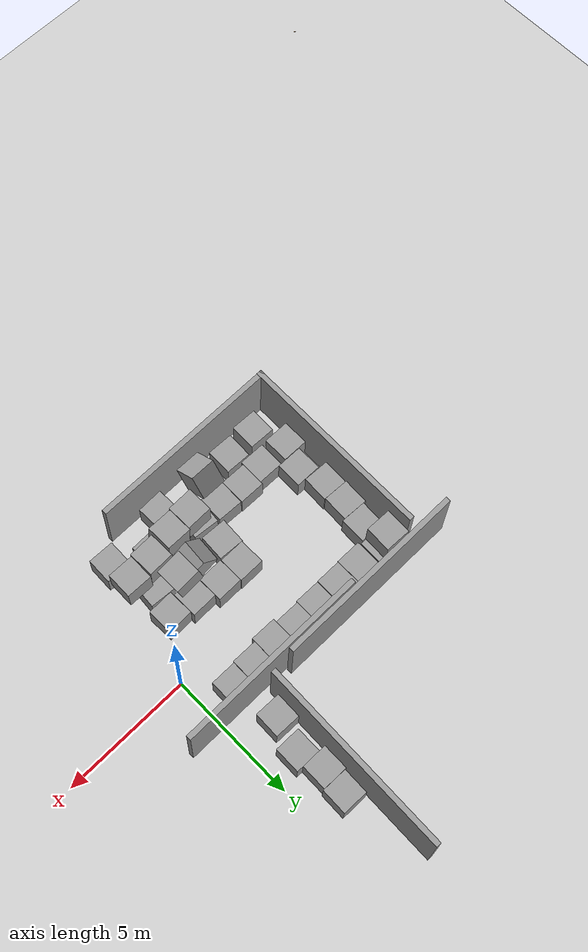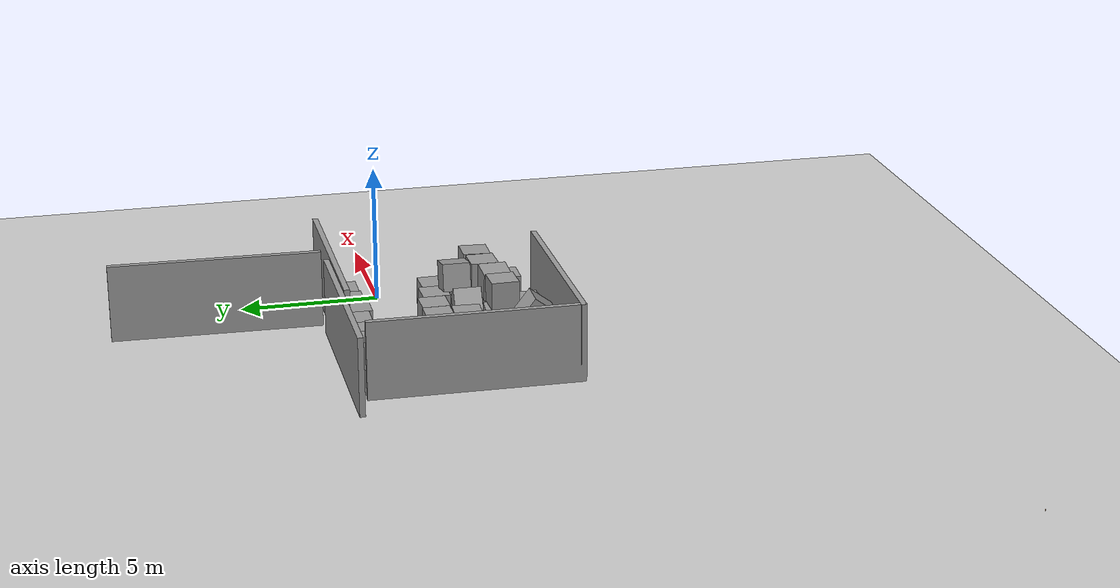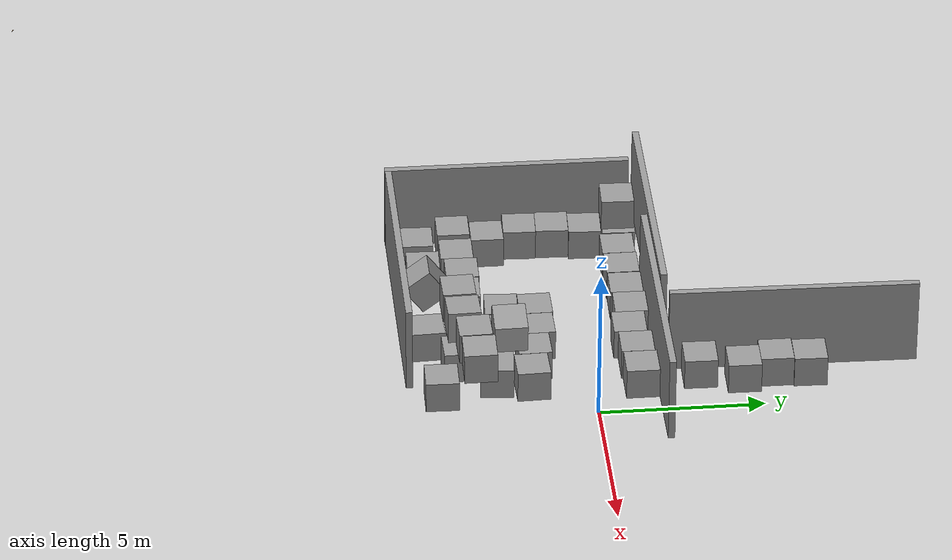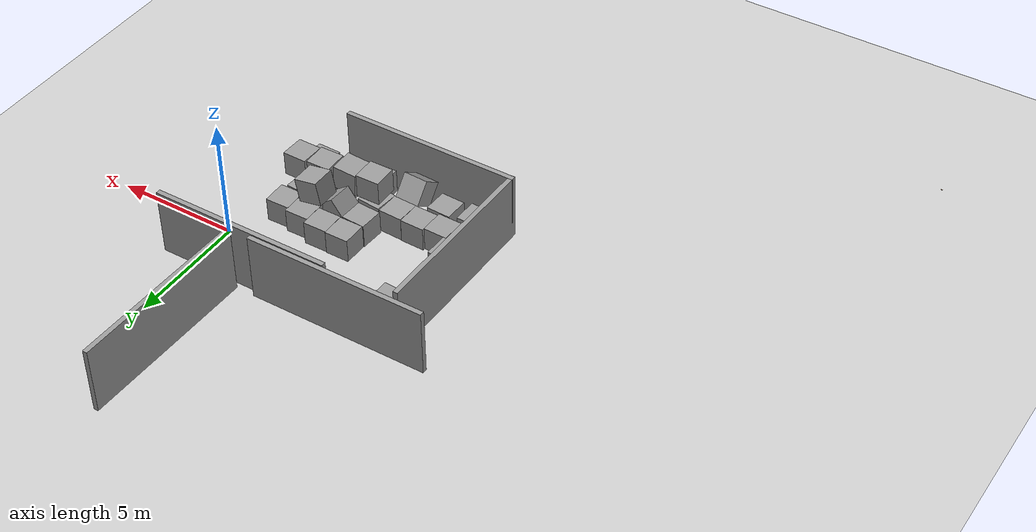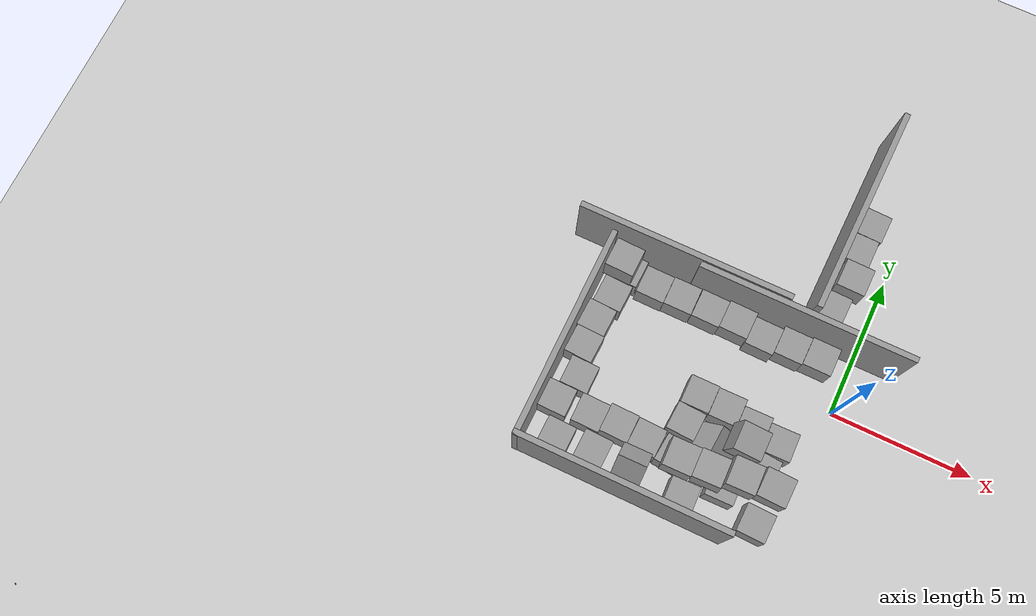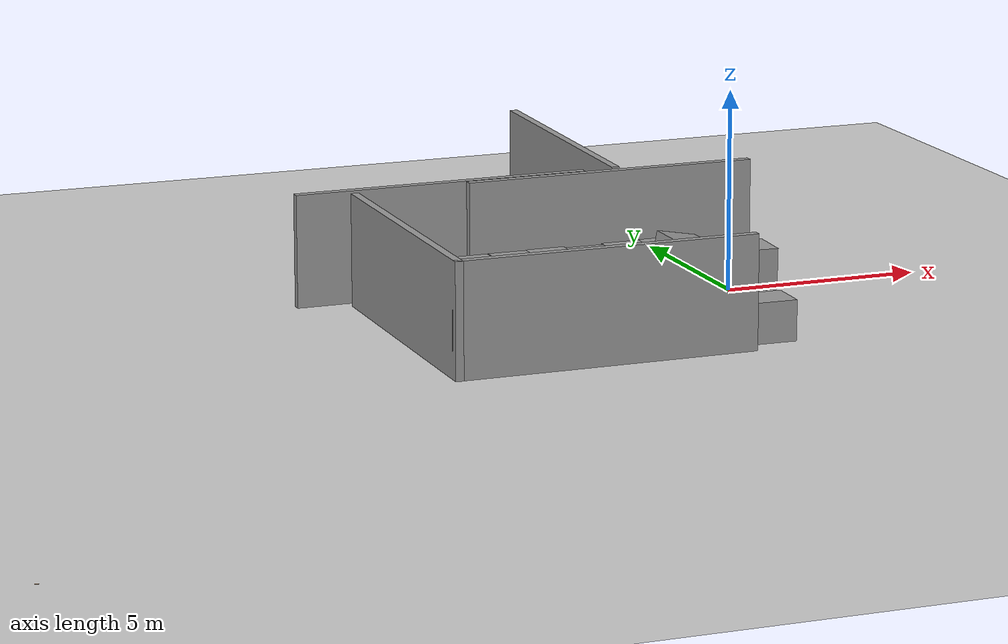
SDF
<sdf version="1.7">
 <world name="default">
  <model name="ground_plane">
   <static>1</static>
   <link name="link">
    <collision name="collision">
     <geometry><plane><normal>0 0 1</normal><size>100 100</size></plane></geometry>
     <surface>
      <contact><collide_bitmask>65535</collide_bitmask></contact>
      <friction><ode><mu>100</mu><mu2>50</mu2></ode></friction>
     </surface>
    </collision>
    <visual name="visual">
     <cast_shadows>0</cast_shadows>
     <geometry><plane><normal>0 0 1</normal><size>100 100</size></plane></geometry>
     <material>
      <script><uri>file://media/materials/scripts/gazebo.material</uri><name>Gazebo/Grey</name></script>
     </material>
    </visual>
   </link>
  </model>
  <model name="unit_box_clone_23">
   <pose>-1.29282 -1.86729 0.499995 0 -1e-05 0.020148</pose>
   <link name="link">
    <inertial>
     <mass>1</mass>
     <inertia>
      <ixx>0.166667</ixx>
      <ixy>0</ixy>
      <ixz>0</ixz>
      <iyy>0.166667</iyy>
      <iyz>0</iyz>
      <izz>0.166667</izz>
     </inertia>
    </inertial>
    <collision name="collision"><geometry><box><size>1 1 1</size></box></geometry></collision>
    <visual name="visual">
     <geometry><box><size>1 1 1</size></box></geometry>
     <material>
      <script><name>Gazebo/Grey</name><uri>file://media/materials/scripts/gazebo.material</uri></script>
     </material>
    </visual>
   </link>
  </model>
  <model name="unit_box_clone_24">
   <pose>-2.29892 -1.72375 0.499954 3e-06 6e-06 0.013212</pose>
   <link name="link">
    <inertial>
     <mass>1</mass>
     <inertia>
      <ixx>0.166667</ixx>
      <ixy>0</ixy>
      <ixz>0</ixz>
      <iyy>0.166667</iyy>
      <iyz>0</iyz>
      <izz>0.166667</izz>
     </inertia>
    </inertial>
    <collision name="collision"><geometry><box><size>1 1 1</size></box></geometry></collision>
    <visual name="visual">
     <geometry><box><size>1 1 1</size></box></geometry>
     <material>
      <script><name>Gazebo/Grey</name><uri>file://media/materials/scripts/gazebo.material</uri></script>
     </material>
    </visual>
   </link>
  </model>
  <model name="unit_box_clone_29">
   <pose>-2.13644 1.36044 0.499995 1e-05 -0 -0.013214</pose>
   <link name="link">
    <inertial>
     <mass>1</mass>
     <inertia>
      <ixx>0.166667</ixx>
      <ixy>0</ixy>
      <ixz>0</ixz>
      <iyy>0.166667</iyy>
      <iyz>0</iyz>
      <izz>0.166667</izz>
     </inertia>
    </inertial>
    <collision name="collision"><geometry><box><size>1 1 1</size></box></geometry></collision>
    <visual name="visual">
     <geometry><box><size>1 1 1</size></box></geometry>
     <material>
      <script><name>Gazebo/Grey</name><uri>file://media/materials/scripts/gazebo.material</uri></script>
     </material>
    </visual>
   </link>
  </model>
  <model name="unit_box">
   <pose>-1.13262 1.39904 0.499995 1e-05 0 -0.006253</pose>
   <link name="link">
    <inertial>
     <mass>1</mass>
     <inertia>
      <ixx>0.166667</ixx>
      <ixy>0</ixy>
      <ixz>0</ixz>
      <iyy>0.166667</iyy>
      <iyz>0</iyz>
      <izz>0.166667</izz>
     </inertia>
    </inertial>
    <collision name="collision"><geometry><box><size>1 1 1</size></box></geometry></collision>
    <visual name="visual">
     <geometry><box><size>1 1 1</size></box></geometry>
     <material>
      <script><name>Gazebo/Grey</name><uri>file://media/materials/scripts/gazebo.material</uri></script>
     </material>
    </visual>
   </link>
  </model>
  <model name="unit_box_clone_36">
   <pose>-1.11482 4.46567 0.499995 1e-05 -0 -0.01509</pose>
   <link name="link">
    <inertial>
     <mass>1</mass>
     <inertia>
      <ixx>0.166667</ixx>
      <ixy>0</ixy>
      <ixz>0</ixz>
      <iyy>0.166667</iyy>
      <iyz>0</iyz>
      <izz>0.166667</izz>
     </inertia>
    </inertial>
    <collision name="collision"><geometry><box><size>1 1 1</size></box></geometry></collision>
    <visual name="visual">
     <geometry><box><size>1 1 1</size></box></geometry>
     <material>
      <script><name>Gazebo/Grey</name><uri>file://media/materials/scripts/gazebo.material</uri></script>
     </material>
    </visual>
   </link>
  </model>
  <model name="unit_box_clone_37">
   <pose>-1.35046 5.46935 0.499995 1e-05 -0 -0.015082</pose>
   <link name="link">
    <inertial>
     <mass>1</mass>
     <inertia>
      <ixx>0.166667</ixx>
      <ixy>0</ixy>
      <ixz>0</ixz>
      <iyy>0.166667</iyy>
      <iyz>0</iyz>
      <izz>0.166667</izz>
     </inertia>
    </inertial>
    <collision name="collision"><geometry><box><size>1 1 1</size></box></geometry></collision>
    <visual name="visual">
     <geometry><box><size>1 1 1</size></box></geometry>
     <material>
      <script><name>Gazebo/Grey</name><uri>file://media/materials/scripts/gazebo.material</uri></script>
     </material>
    </visual>
   </link>
  </model>
  <model name="unit_box_clone_38">
   <pose>-1.26902 6.47362 0.5 -0 -0 -0.025535</pose>
   <link name="link">
    <inertial>
     <mass>1</mass>
     <inertia>
      <ixx>0.166667</ixx>
      <ixy>0</ixy>
      <ixz>0</ixz>
      <iyy>0.166667</iyy>
      <iyz>0</iyz>
      <izz>0.166667</izz>
     </inertia>
    </inertial>
    <collision name="collision"><geometry><box><size>1 1 1</size></box></geometry></collision>
    <visual name="visual">
     <geometry><box><size>1 1 1</size></box></geometry>
     <material>
      <script><name>Gazebo/Grey</name><uri>file://media/materials/scripts/gazebo.material</uri></script>
     </material>
    </visual>
   </link>
  </model>
  <model name="wooden_peg">
   <link name="link">
    <pose>0 0 0.04 0 -0 0</pose>
    <inertial>
     <mass>0.0175</mass>
     <inertia>
      <ixx>9.74923e-06</ixx>
      <ixy>0</ixy>
      <ixz>0</ixz>
      <iyy>9.74923e-06</iyy>
      <iyz>0</iyz>
      <izz>8.31797e-07</izz>
     </inertia>
    </inertial>
    <collision name="collision">
     <geometry><cylinder><radius>0.00975</radius><length>0.08</length></cylinder></geometry>
     <surface>
      <contact>
       <poissons_ratio>0.347</poissons_ratio>
       <elastic_modulus>8.8e+09</elastic_modulus>
       <ode><kp>100000</kp><kd>100</kd><max_vel>100</max_vel><min_depth>0.001</min_depth></ode>
      </contact>
      <friction>
       <torsional>
        <coefficient>1</coefficient>
        <use_patch_radius>0</use_patch_radius>
        <surface_radius>0.01</surface_radius>
       </torsional>
      </friction>
     </surface>
    </collision>
    <visual name="visual">
     <geometry><cylinder><radius>0.00975</radius><length>0.08</length></cylinder></geometry>
     <material>
      <script><uri>file://media/materials/scripts/gazebo.material</uri><name>Gazebo/Wood</name></script>
     </material>
    </visual>
   </link>
   <pose>-21.8756 -16.6098 0.008749 1.5708 -0.142656 -1.96949</pose>
  </model>
  <model name="unit_box_0_clone">
   <pose>-4.30767 -1.49488 0.5 0 -0 0.003515</pose>
   <link name="link">
    <inertial>
     <mass>1</mass>
     <inertia>
      <ixx>0.166667</ixx>
      <ixy>0</ixy>
      <ixz>0</ixz>
      <iyy>0.166667</iyy>
      <iyz>0</iyz>
      <izz>0.166667</izz>
     </inertia>
    </inertial>
    <collision name="collision"><geometry><box><size>1 1 1</size></box></geometry></collision>
    <visual name="visual">
     <geometry><box><size>1 1 1</size></box></geometry>
     <material>
      <script><name>Gazebo/Grey</name><uri>file://media/materials/scripts/gazebo.material</uri></script>
     </material>
    </visual>
   </link>
  </model>
  <model name="unit_box_0_clone_0">
   <pose>-4.3661 -2.52118 0.5 0 0 -0.054039</pose>
   <link name="link">
    <inertial>
     <mass>1</mass>
     <inertia>
      <ixx>0.166667</ixx>
      <ixy>0</ixy>
      <ixz>0</ixz>
      <iyy>0.166667</iyy>
      <iyz>0</iyz>
      <izz>0.166667</izz>
     </inertia>
    </inertial>
    <collision name="collision"><geometry><box><size>1 1 1</size></box></geometry></collision>
    <visual name="visual">
     <geometry><box><size>1 1 1</size></box></geometry>
     <material>
      <script><name>Gazebo/Grey</name><uri>file://media/materials/scripts/gazebo.material</uri></script>
     </material>
    </visual>
   </link>
  </model>
  <model name="unit_box_0_clone_1">
   <pose>-4.28273 -3.66907 0.500015 0.000859 -0.000416 -0.099707</pose>
   <link name="link">
    <inertial>
     <mass>1</mass>
     <inertia>
      <ixx>0.166667</ixx>
      <ixy>0</ixy>
      <ixz>0</ixz>
      <iyy>0.166667</iyy>
      <iyz>0</iyz>
      <izz>0.166667</izz>
     </inertia>
    </inertial>
    <collision name="collision"><geometry><box><size>1 1 1</size></box></geometry></collision>
    <visual name="visual">
     <geometry><box><size>1 1 1</size></box></geometry>
     <material>
      <script><name>Gazebo/Grey</name><uri>file://media/materials/scripts/gazebo.material</uri></script>
     </material>
    </visual>
   </link>
  </model>
  <model name="unit_box_0_clone_2">
   <pose>-5.31227 -3.57707 0.501471 -0.002328 -0.00062 -0.037728</pose>
   <link name="link">
    <inertial>
     <mass>1</mass>
     <inertia>
      <ixx>0.166667</ixx>
      <ixy>0</ixy>
      <ixz>0</ixz>
      <iyy>0.166667</iyy>
      <iyz>0</iyz>
      <izz>0.166667</izz>
     </inertia>
    </inertial>
    <collision name="collision"><geometry><box><size>1 1 1</size></box></geometry></collision>
    <visual name="visual">
     <geometry><box><size>1 1 1</size></box></geometry>
     <material>
      <script><name>Gazebo/Grey</name><uri>file://media/materials/scripts/gazebo.material</uri></script>
     </material>
    </visual>
   </link>
  </model>
  <model name="unit_box_0_clone_3">
   <pose>-6.32139 -3.52894 0.501214 -0.001845 -0.000582 -0.01708</pose>
   <link name="link">
    <inertial>
     <mass>1</mass>
     <inertia>
      <ixx>0.166667</ixx>
      <ixy>0</ixy>
      <ixz>0</ixz>
      <iyy>0.166667</iyy>
      <iyz>0</iyz>
      <izz>0.166667</izz>
     </inertia>
    </inertial>
    <collision name="collision"><geometry><box><size>1 1 1</size></box></geometry></collision>
    <visual name="visual">
     <geometry><box><size>1 1 1</size></box></geometry>
     <material>
      <script><name>Gazebo/Grey</name><uri>file://media/materials/scripts/gazebo.material</uri></script>
     </material>
    </visual>
   </link>
  </model>
  <model name="unit_box_0_clone_4">
   <pose>-7.32288 -3.60792 0.500288 2e-06 -0.000582 -0.017082</pose>
   <link name="link">
    <inertial>
     <mass>1</mass>
     <inertia>
      <ixx>0.166667</ixx>
      <ixy>0</ixy>
      <ixz>0</ixz>
      <iyy>0.166667</iyy>
      <iyz>0</iyz>
      <izz>0.166667</izz>
     </inertia>
    </inertial>
    <collision name="collision"><geometry><box><size>1 1 1</size></box></geometry></collision>
    <visual name="visual">
     <geometry><box><size>1 1 1</size></box></geometry>
     <material>
      <script><name>Gazebo/Grey</name><uri>file://media/materials/scripts/gazebo.material</uri></script>
     </material>
    </visual>
   </link>
  </model>
  <model name="unit_box_0_clone_5">
   <pose>-3.13916 1.24461 0.499995 -1e-05 -0 -0.015417</pose>
   <link name="link">
    <inertial>
     <mass>1</mass>
     <inertia>
      <ixx>0.166667</ixx>
      <ixy>0</ixy>
      <ixz>0</ixz>
      <iyy>0.166667</iyy>
      <iyz>0</iyz>
      <izz>0.166667</izz>
     </inertia>
    </inertial>
    <collision name="collision"><geometry><box><size>1 1 1</size></box></geometry></collision>
    <visual name="visual">
     <geometry><box><size>1 1 1</size></box></geometry>
     <material>
      <script><name>Gazebo/Grey</name><uri>file://media/materials/scripts/gazebo.material</uri></script>
     </material>
    </visual>
   </link>
  </model>
  <model name="unit_box_0_clone_6">
   <pose>-4.13726 1.39099 0.499995 0 -1e-05 -0.01599</pose>
   <link name="link">
    <inertial>
     <mass>1</mass>
     <inertia>
      <ixx>0.166667</ixx>
      <ixy>0</ixy>
      <ixz>0</ixz>
      <iyy>0.166667</iyy>
      <iyz>0</iyz>
      <izz>0.166667</izz>
     </inertia>
    </inertial>
    <collision name="collision"><geometry><box><size>1 1 1</size></box></geometry></collision>
    <visual name="visual">
     <geometry><box><size>1 1 1</size></box></geometry>
     <material>
      <script><name>Gazebo/Grey</name><uri>file://media/materials/scripts/gazebo.material</uri></script>
     </material>
    </visual>
   </link>
  </model>
  <model name="unit_box_0_clone_clone">
   <pose>-3.30328 -1.51576 0.5 0 -0 0.007757</pose>
   <link name="link">
    <inertial>
     <mass>1</mass>
     <inertia>
      <ixx>0.166667</ixx>
      <ixy>0</ixy>
      <ixz>0</ixz>
      <iyy>0.166667</iyy>
      <iyz>0</iyz>
      <izz>0.166667</izz>
     </inertia>
    </inertial>
    <collision name="collision"><geometry><box><size>1 1 1</size></box></geometry></collision>
    <visual name="visual">
     <geometry><box><size>1 1 1</size></box></geometry>
     <material>
      <script><name>Gazebo/Grey</name><uri>file://media/materials/scripts/gazebo.material</uri></script>
     </material>
    </visual>
   </link>
  </model>
  <model name="unit_box_0_clone_clone_2">
   <pose>-5.13791 1.359 0.499995 0 1e-05 -0.016027</pose>
   <link name="link">
    <inertial>
     <mass>1</mass>
     <inertia>
      <ixx>0.166667</ixx>
      <ixy>0</ixy>
      <ixz>0</ixz>
      <iyy>0.166667</iyy>
      <iyz>0</iyz>
      <izz>0.166667</izz>
     </inertia>
    </inertial>
    <collision name="collision"><geometry><box><size>1 1 1</size></box></geometry></collision>
    <visual name="visual">
     <geometry><box><size>1 1 1</size></box></geometry>
     <material>
      <script><name>Gazebo/Grey</name><uri>file://media/materials/scripts/gazebo.material</uri></script>
     </material>
    </visual>
   </link>
  </model>
  <model name="unit_box_0_clone_clone_1">
   <pose>-8.52804 -3.60708 0.499995 0 1e-05 -0.01301</pose>
   <link name="link">
    <inertial>
     <mass>1</mass>
     <inertia>
      <ixx>0.166667</ixx>
      <ixy>0</ixy>
      <ixz>0</ixz>
      <iyy>0.166667</iyy>
      <iyz>0</iyz>
      <izz>0.166667</izz>
     </inertia>
    </inertial>
    <collision name="collision"><geometry><box><size>1 1 1</size></box></geometry></collision>
    <visual name="visual">
     <geometry><box><size>1 1 1</size></box></geometry>
     <material>
      <script><name>Gazebo/Grey</name><uri>file://media/materials/scripts/gazebo.material</uri></script>
     </material>
    </visual>
   </link>
  </model>
  <model name="unit_box_0_clone_clone_5">
   <pose>-8.18336 -2.59357 0.5 0 0 -0.015605</pose>
   <link name="link">
    <inertial>
     <mass>1</mass>
     <inertia>
      <ixx>0.166667</ixx>
      <ixy>0</ixy>
      <ixz>0</ixz>
      <iyy>0.166667</iyy>
      <iyz>0</iyz>
      <izz>0.166667</izz>
     </inertia>
    </inertial>
    <collision name="collision"><geometry><box><size>1 1 1</size></box></geometry></collision>
    <visual name="visual">
     <geometry><box><size>1 1 1</size></box></geometry>
     <material>
      <script><name>Gazebo/Grey</name><uri>file://media/materials/scripts/gazebo.material</uri></script>
     </material>
    </visual>
   </link>
  </model>
  <model name="unit_box_0_clone_clone_7">
   <pose>-8.48382 -1.56332 0.499995 -1e-05 -0 -0.048339</pose>
   <link name="link">
    <inertial>
     <mass>1</mass>
     <inertia>
      <ixx>0.166667</ixx>
      <ixy>0</ixy>
      <ixz>0</ixz>
      <iyy>0.166667</iyy>
      <iyz>0</iyz>
      <izz>0.166667</izz>
     </inertia>
    </inertial>
    <collision name="collision"><geometry><box><size>1 1 1</size></box></geometry></collision>
    <visual name="visual">
     <geometry><box><size>1 1 1</size></box></geometry>
     <material>
      <script><name>Gazebo/Grey</name><uri>file://media/materials/scripts/gazebo.material</uri></script>
     </material>
    </visual>
   </link>
  </model>
  <model name="unit_box_0_clone_clone_8">
   <pose>-8.47179 -0.562022 0.499995 1e-05 -0 -0.046855</pose>
   <link name="link">
    <inertial>
     <mass>1</mass>
     <inertia>
      <ixx>0.166667</ixx>
      <ixy>0</ixy>
      <ixz>0</ixz>
      <iyy>0.166667</iyy>
      <iyz>0</iyz>
      <izz>0.166667</izz>
     </inertia>
    </inertial>
    <collision name="collision"><geometry><box><size>1 1 1</size></box></geometry></collision>
    <visual name="visual">
     <geometry><box><size>1 1 1</size></box></geometry>
     <material>
      <script><name>Gazebo/Grey</name><uri>file://media/materials/scripts/gazebo.material</uri></script>
     </material>
    </visual>
   </link>
  </model>
  <model name="unit_box_0_clone_clone_10">
   <pose>-6.15676 1.35585 0.499995 1e-05 -0 -0.00416</pose>
   <link name="link">
    <inertial>
     <mass>1</mass>
     <inertia>
      <ixx>0.166667</ixx>
      <ixy>0</ixy>
      <ixz>0</ixz>
      <iyy>0.166667</iyy>
      <iyz>0</iyz>
      <izz>0.166667</izz>
     </inertia>
    </inertial>
    <collision name="collision"><geometry><box><size>1 1 1</size></box></geometry></collision>
    <visual name="visual">
     <geometry><box><size>1 1 1</size></box></geometry>
     <material>
      <script><name>Gazebo/Grey</name><uri>file://media/materials/scripts/gazebo.material</uri></script>
     </material>
    </visual>
   </link>
  </model>
  <model name="grey_wall_clone_clone">
   <static>1</static>
   <link name="link">
    <pose>0 0 1.4 0 -0 0</pose>
    <collision name="collision"><geometry><box><size>7.5 0.2 2.8</size></box></geometry></collision>
    <visual name="visual">
     <cast_shadows>0</cast_shadows>
     <geometry><box><size>7.5 0.2 2.8</size></box></geometry>
     <material>
      <script>
       <uri>model://grey_wall/materials/scripts</uri>
       <uri>model://grey_wall/materials/textures</uri>
       <name>vrc/grey_wall</name>
      </script>
     </material>
    </visual>
   </link>
   <pose>-6.70131 2.24351 0 0 -0 0</pose>
  </model>
  <model name="grey_wall_clone_clone_0">
   <static>1</static>
   <link name="link">
    <pose>0 0 1.4 0 -0 0</pose>
    <collision name="collision"><geometry><box><size>7.5 0.2 2.8</size></box></geometry></collision>
    <visual name="visual">
     <cast_shadows>0</cast_shadows>
     <geometry><box><size>7.5 0.2 2.8</size></box></geometry>
     <material>
      <script>
       <uri>model://grey_wall/materials/scripts</uri>
       <uri>model://grey_wall/materials/textures</uri>
       <name>vrc/grey_wall</name>
      </script>
     </material>
    </visual>
   </link>
   <pose>-9.10566 -1.88268 0 0 0 -1.58381</pose>
  </model>
  <model name="grey_wall_clone_0_clone_clone">
   <static>1</static>
   <link name="link">
    <pose>0 0 1.4 0 -0 0</pose>
    <collision name="collision"><geometry><box><size>7.5 0.2 2.8</size></box></geometry></collision>
    <visual name="visual">
     <cast_shadows>0</cast_shadows>
     <geometry><box><size>7.5 0.2 2.8</size></box></geometry>
     <material>
      <script>
       <uri>model://grey_wall/materials/scripts</uri>
       <uri>model://grey_wall/materials/textures</uri>
       <name>vrc/grey_wall</name>
      </script>
     </material>
    </visual>
   </link>
   <pose>-1.97959 6.05795 0 0 -0 1.54652</pose>
  </model>
  <model name="grey_wall_clone_clone_clone_0">
   <static>1</static>
   <link name="link">
    <pose>0 0 1.4 0 -0 0</pose>
    <collision name="collision"><geometry><box><size>7.5 0.2 2.8</size></box></geometry></collision>
    <visual name="visual">
     <cast_shadows>0</cast_shadows>
     <geometry><box><size>7.5 0.2 2.8</size></box></geometry>
     <material>
      <script>
       <uri>model://grey_wall/materials/scripts</uri>
       <uri>model://grey_wall/materials/textures</uri>
       <name>vrc/grey_wall</name>
      </script>
     </material>
    </visual>
   </link>
   <pose>-2.34254 2.00218 0 0 -0 0</pose>
  </model>
  <model name="unit_box_0_clone_clone_8_clone">
   <pose>-7.1602 1.33939 0.499995 1e-05 -0 -0.010508</pose>
   <link name="link">
    <inertial>
     <mass>1</mass>
     <inertia>
      <ixx>0.166667</ixx>
      <ixy>0</ixy>
      <ixz>0</ixz>
      <iyy>0.166667</iyy>
      <iyz>0</iyz>
      <izz>0.166667</izz>
     </inertia>
    </inertial>
    <collision name="collision"><geometry><box><size>1 1 1</size></box></geometry></collision>
    <visual name="visual">
     <geometry><box><size>1 1 1</size></box></geometry>
     <material>
      <script><name>Gazebo/Grey</name><uri>file://media/materials/scripts/gazebo.material</uri></script>
     </material>
    </visual>
   </link>
  </model>
  <model name="unit_box_0_clone_clone_8_clone_0">
   <pose>-8.1892 1.46284 0.494063 0.00066 -0.006292 -0.03604</pose>
   <link name="link">
    <inertial>
     <mass>1</mass>
     <inertia>
      <ixx>0.166667</ixx>
      <ixy>0</ixy>
      <ixz>0</ixz>
      <iyy>0.166667</iyy>
      <iyz>0</iyz>
      <izz>0.166667</izz>
     </inertia>
    </inertial>
    <collision name="collision"><geometry><box><size>1 1 1</size></box></geometry></collision>
    <visual name="visual">
     <geometry><box><size>1 1 1</size></box></geometry>
     <material>
      <script><name>Gazebo/Grey</name><uri>file://media/materials/scripts/gazebo.material</uri></script>
     </material>
    </visual>
   </link>
  </model>
  <model name="unit_box_0_clone_clone_8_clone_0_clone">
   <pose>-8.32799 0.435714 0.499995 1e-05 -0 -0.040091</pose>
   <link name="link">
    <inertial>
     <mass>1</mass>
     <inertia>
      <ixx>0.166667</ixx>
      <ixy>0</ixy>
      <ixz>0</ixz>
      <iyy>0.166667</iyy>
      <iyz>0</iyz>
      <izz>0.166667</izz>
     </inertia>
    </inertial>
    <collision name="collision"><geometry><box><size>1 1 1</size></box></geometry></collision>
    <visual name="visual">
     <geometry><box><size>1 1 1</size></box></geometry>
     <material>
      <script><name>Gazebo/Grey</name><uri>file://media/materials/scripts/gazebo.material</uri></script>
     </material>
    </visual>
   </link>
  </model>
  <model name="unit_box_clone_32_clone_1">
   <pose>-1.44259 3.1858 0.499995 -1e-05 -0 -0.025906</pose>
   <link name="link">
    <inertial>
     <mass>1</mass>
     <inertia>
      <ixx>0.166667</ixx>
      <ixy>0</ixy>
      <ixz>0</ixz>
      <iyy>0.166667</iyy>
      <iyz>0</iyz>
      <izz>0.166667</izz>
     </inertia>
    </inertial>
    <collision name="collision"><geometry><box><size>1 1 1</size></box></geometry></collision>
    <visual name="visual">
     <geometry><box><size>1 1 1</size></box></geometry>
     <material>
      <script><name>Gazebo/Grey</name><uri>file://media/materials/scripts/gazebo.material</uri></script>
     </material>
    </visual>
   </link>
  </model>
  <model name="grey_wall_clone">
   <static>1</static>
   <link name="link">
    <pose>0 0 1.4 0 -0 0</pose>
    <collision name="collision"><geometry><box><size>7.5 0.2 2.8</size></box></geometry></collision>
    <visual name="visual">
     <cast_shadows>0</cast_shadows>
     <geometry><box><size>7.5 0.2 2.8</size></box></geometry>
     <material>
      <script>
       <uri>model://grey_wall/materials/scripts</uri>
       <uri>model://grey_wall/materials/textures</uri>
       <name>vrc/grey_wall</name>
      </script>
     </material>
    </visual>
   </link>
   <pose>-5.50196 -5.52391 0 0 -0 0</pose>
  </model>
  <model name="unit_box_clone_32_clone_2_clone">
   <pose>-1.52055 -2.90737 0.500472 0.003206 0.002542 -0.076178</pose>
   <link name="link">
    <inertial>
     <mass>1</mass>
     <inertia>
      <ixx>0.166667</ixx>
      <ixy>0</ixy>
      <ixz>0</ixz>
      <iyy>0.166667</iyy>
      <iyz>0</iyz>
      <izz>0.166667</izz>
     </inertia>
    </inertial>
    <collision name="collision"><geometry><box><size>1 1 1</size></box></geometry></collision>
    <visual name="visual">
     <geometry><box><size>1 1 1</size></box></geometry>
     <material>
      <script><name>Gazebo/Grey</name><uri>file://media/materials/scripts/gazebo.material</uri></script>
     </material>
    </visual>
   </link>
  </model>
  <model name="unit_box_clone_32_clone_2_clone_0">
   <pose>-1.01608 -4.62035 0.500026 1.57079 4.9e-05 -0.026441</pose>
   <link name="link">
    <inertial>
     <mass>1</mass>
     <inertia>
      <ixx>0.166667</ixx>
      <ixy>0</ixy>
      <ixz>0</ixz>
      <iyy>0.166667</iyy>
      <iyz>0</iyz>
      <izz>0.166667</izz>
     </inertia>
    </inertial>
    <collision name="collision"><geometry><box><size>1 1 1</size></box></geometry></collision>
    <visual name="visual">
     <geometry><box><size>1 1 1</size></box></geometry>
     <material>
      <script><name>Gazebo/Grey</name><uri>file://media/materials/scripts/gazebo.material</uri></script>
     </material>
    </visual>
   </link>
  </model>
  <model name="unit_box_clone_32_clone_2_clone_6">
   <pose>-1.00605 -3.47447 1.49656 0.017202 0.01079 -0.020381</pose>
   <link name="link">
    <inertial>
     <mass>1</mass>
     <inertia>
      <ixx>0.166667</ixx>
      <ixy>0</ixy>
      <ixz>0</ixz>
      <iyy>0.166667</iyy>
      <iyz>0</iyz>
      <izz>0.166667</izz>
     </inertia>
    </inertial>
    <collision name="collision"><geometry><box><size>1 1 1</size></box></geometry></collision>
    <visual name="visual">
     <geometry><box><size>1 1 1</size></box></geometry>
     <material>
      <script><name>Gazebo/Grey</name><uri>file://media/materials/scripts/gazebo.material</uri></script>
     </material>
    </visual>
   </link>
  </model>
  <model name="unit_box_clone_32_clone_2_clone_7">
   <pose>-2.41529 -3.95793 0.499815 -1e-06 -0 0.017896</pose>
   <link name="link">
    <inertial>
     <mass>1</mass>
     <inertia>
      <ixx>0.166667</ixx>
      <ixy>0</ixy>
      <ixz>0</ixz>
      <iyy>0.166667</iyy>
      <iyz>0</iyz>
      <izz>0.166667</izz>
     </inertia>
    </inertial>
    <collision name="collision"><geometry><box><size>1 1 1</size></box></geometry></collision>
    <visual name="visual">
     <geometry><box><size>1 1 1</size></box></geometry>
     <material>
      <script><name>Gazebo/Grey</name><uri>file://media/materials/scripts/gazebo.material</uri></script>
     </material>
    </visual>
   </link>
  </model>
  <model name="unit_box_clone_32_clone_2_clone_8">
   <pose>-3.16905 -2.75539 0.711081 -0.025087 0.657021 -0.088516</pose>
   <link name="link">
    <inertial>
     <mass>1</mass>
     <inertia>
      <ixx>0.166667</ixx>
      <ixy>0</ixy>
      <ixz>0</ixz>
      <iyy>0.166667</iyy>
      <iyz>0</iyz>
      <izz>0.166667</izz>
     </inertia>
    </inertial>
    <collision name="collision"><geometry><box><size>1 1 1</size></box></geometry></collision>
    <visual name="visual">
     <geometry><box><size>1 1 1</size></box></geometry>
     <material>
      <script><name>Gazebo/Grey</name><uri>file://media/materials/scripts/gazebo.material</uri></script>
     </material>
    </visual>
   </link>
  </model>
  <model name="unit_box_clone_32_clone_2_clone_9">
   <pose>-2.35624 -2.45058 1.5847 0.004741 0.182963 0.001568</pose>
   <link name="link">
    <inertial>
     <mass>1</mass>
     <inertia>
      <ixx>0.166667</ixx>
      <ixy>0</ixy>
      <ixz>0</ixz>
      <iyy>0.166667</iyy>
      <iyz>0</iyz>
      <izz>0.166667</izz>
     </inertia>
    </inertial>
    <collision name="collision"><geometry><box><size>1 1 1</size></box></geometry></collision>
    <visual name="visual">
     <geometry><box><size>1 1 1</size></box></geometry>
     <material>
      <script><name>Gazebo/Grey</name><uri>file://media/materials/scripts/gazebo.material</uri></script>
     </material>
    </visual>
   </link>
  </model>
  <model name="unit_box_clone_32_clone_2_clone_10">
   <pose>-3.54103 -4.82982 0.499967 -1.57115 -1.57079 1.59982</pose>
   <link name="link">
    <inertial>
     <mass>1</mass>
     <inertia>
      <ixx>0.166667</ixx>
      <ixy>0</ixy>
      <ixz>0</ixz>
      <iyy>0.166667</iyy>
      <iyz>0</iyz>
      <izz>0.166667</izz>
     </inertia>
    </inertial>
    <collision name="collision"><geometry><box><size>1 1 1</size></box></geometry></collision>
    <visual name="visual">
     <geometry><box><size>1 1 1</size></box></geometry>
     <material>
      <script><name>Gazebo/Grey</name><uri>file://media/materials/scripts/gazebo.material</uri></script>
     </material>
    </visual>
   </link>
  </model>
  <model name="unit_box_clone_32_clone_2_clone_11">
   <pose>-4.09892 -3.84526 1.50008 0.000177 -0.000137 0.016549</pose>
   <link name="link">
    <inertial>
     <mass>1</mass>
     <inertia>
      <ixx>0.166667</ixx>
      <ixy>0</ixy>
      <ixz>0</ixz>
      <iyy>0.166667</iyy>
      <iyz>0</iyz>
      <izz>0.166667</izz>
     </inertia>
    </inertial>
    <collision name="collision"><geometry><box><size>1 1 1</size></box></geometry></collision>
    <visual name="visual">
     <geometry><box><size>1 1 1</size></box></geometry>
     <material>
      <script><name>Gazebo/Grey</name><uri>file://media/materials/scripts/gazebo.material</uri></script>
     </material>
    </visual>
   </link>
  </model>
  <model name="unit_box_clone_32_clone_2_clone_12">
   <pose>-3.06494 -3.78563 1.49069 9.2e-05 -0.072374 0.016552</pose>
   <link name="link">
    <inertial>
     <mass>1</mass>
     <inertia>
      <ixx>0.166667</ixx>
      <ixy>0</ixy>
      <ixz>0</ixz>
      <iyy>0.166667</iyy>
      <iyz>0</iyz>
      <izz>0.166667</izz>
     </inertia>
    </inertial>
    <collision name="collision"><geometry><box><size>1 1 1</size></box></geometry></collision>
    <visual name="visual">
     <geometry><box><size>1 1 1</size></box></geometry>
     <material>
      <script><name>Gazebo/Grey</name><uri>file://media/materials/scripts/gazebo.material</uri></script>
     </material>
    </visual>
   </link>
  </model>
  <model name="unit_box_clone_32_clone_2_clone_13">
   <pose>-2.03277 -3.5434 1.49994 0.000275 -5.3e-05 0.02043</pose>
   <link name="link">
    <inertial>
     <mass>1</mass>
     <inertia>
      <ixx>0.166667</ixx>
      <ixy>0</ixy>
      <ixz>0</ixz>
      <iyy>0.166667</iyy>
      <iyz>0</iyz>
      <izz>0.166667</izz>
     </inertia>
    </inertial>
    <collision name="collision"><geometry><box><size>1 1 1</size></box></geometry></collision>
    <visual name="visual">
     <geometry><box><size>1 1 1</size></box></geometry>
     <material>
      <script><name>Gazebo/Grey</name><uri>file://media/materials/scripts/gazebo.material</uri></script>
     </material>
    </visual>
   </link>
  </model>
  <model name="unit_box_clone_32_clone_2_clone_14">
   <pose>-8.02901 -4.76722 0.499995 0 1e-05 -0.033157</pose>
   <link name="link">
    <inertial>
     <mass>1</mass>
     <inertia>
      <ixx>0.166667</ixx>
      <ixy>0</ixy>
      <ixz>0</ixz>
      <iyy>0.166667</iyy>
      <iyz>0</iyz>
      <izz>0.166667</izz>
     </inertia>
    </inertial>
    <collision name="collision"><geometry><box><size>1 1 1</size></box></geometry></collision>
    <visual name="visual">
     <geometry><box><size>1 1 1</size></box></geometry>
     <material>
      <script><name>Gazebo/Grey</name><uri>file://media/materials/scripts/gazebo.material</uri></script>
     </material>
    </visual>
   </link>
  </model>
  <model name="unit_box_clone_32_clone_2_clone_15">
   <pose>-6.75605 -4.66712 0.5 0 -0 -0.032827</pose>
   <link name="link">
    <inertial>
     <mass>1</mass>
     <inertia>
      <ixx>0.166667</ixx>
      <ixy>0</ixy>
      <ixz>0</ixz>
      <iyy>0.166667</iyy>
      <iyz>0</iyz>
      <izz>0.166667</izz>
     </inertia>
    </inertial>
    <collision name="collision"><geometry><box><size>1 1 1</size></box></geometry></collision>
    <visual name="visual">
     <geometry><box><size>1 1 1</size></box></geometry>
     <material>
      <script><name>Gazebo/Grey</name><uri>file://media/materials/scripts/gazebo.material</uri></script>
     </material>
    </visual>
   </link>
  </model>
  <model name="unit_box_clone_32_clone_2_clone_16">
   <pose>-5.42352 -4.72331 1.14066 0.649633 -0.041028 -1e-06</pose>
   <link name="link">
    <inertial>
     <mass>1</mass>
     <inertia>
      <ixx>0.166667</ixx>
      <ixy>0</ixy>
      <ixz>0</ixz>
      <iyy>0.166667</iyy>
      <iyz>0</iyz>
      <izz>0.166667</izz>
     </inertia>
    </inertial>
    <collision name="collision"><geometry><box><size>1 1 1</size></box></geometry></collision>
    <visual name="visual">
     <geometry><box><size>1 1 1</size></box></geometry>
     <material>
      <script><name>Gazebo/Grey</name><uri>file://media/materials/scripts/gazebo.material</uri></script>
     </material>
    </visual>
   </link>
  </model>
  <model name="unit_box_clone_32_clone_2_clone_17">
   <pose>-8.42587 1.44562 1.49255 0.000639 -0.006322 -0.032209</pose>
   <link name="link">
    <inertial>
     <mass>1</mass>
     <inertia>
      <ixx>0.166667</ixx>
      <ixy>0</ixy>
      <ixz>0</ixz>
      <iyy>0.166667</iyy>
      <iyz>0</iyz>
      <izz>0.166667</izz>
     </inertia>
    </inertial>
    <collision name="collision"><geometry><box><size>1 1 1</size></box></geometry></collision>
    <visual name="visual">
     <geometry><box><size>1 1 1</size></box></geometry>
     <material>
      <script><name>Gazebo/Grey</name><uri>file://media/materials/scripts/gazebo.material</uri></script>
     </material>
    </visual>
   </link>
  </model>
 </world>
</sdf>
